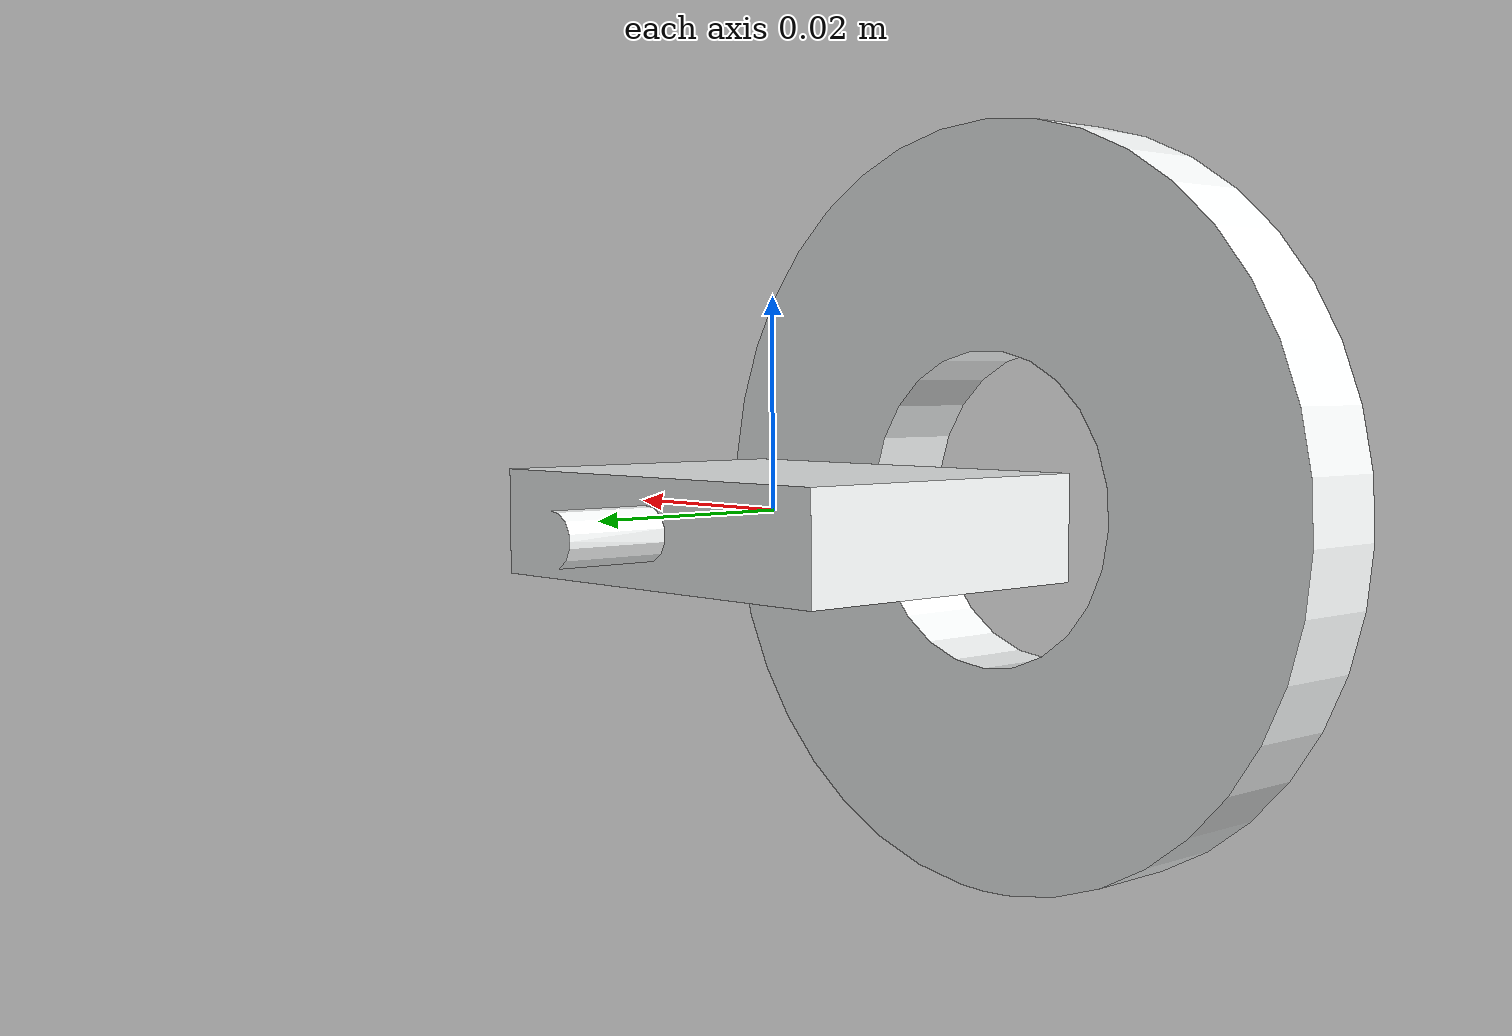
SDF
<sdf version='1.9'>
  <model name='Montaj1'>
    <link name='base_link'>
      <inertial>
        <pose>-0.0013654 -0.00019199 -0.0012332 0 0 0</pose>
        <mass>0.014123</mass>
        <inertia>
          <ixx>1.4814999999999999e-06</ixx>
          <ixy>-1.6467e-22</ixy>
          <ixz>8.7230000000000001e-25</ixz>
          <iyy>2.2071999999999998e-06</iyy>
          <iyz>7.5505000000000004e-23</iyz>
          <izz>3.4597000000000001e-06</izz>
        </inertia>
      </inertial>
      <collision name='base_link_collision'>
        <pose>0 0 0 0 0 0</pose>
        <geometry>
          <mesh>
            <scale>1 1 1</scale>
            <uri>model://urdf/Montaj1/meshes/base_link.STL</uri>
          </mesh>
        </geometry>
      </collision>
      <visual name='base_link_visual'>
        <pose>0 0 0 0 0 0</pose>
        <geometry>
          <mesh>
            <scale>1 1 1</scale>
            <uri>model://urdf/Montaj1/meshes/base_link.STL</uri>
          </mesh>
        </geometry>
        <material>
          <diffuse>0.9902 1 1 1</diffuse>
          <ambient>0.9902 1 1 1</ambient>
        </material>
      </visual>
    </link>
    <joint name='wheelleft_joint' type='revolute'>
      <pose relative_to='base_link'>-0.0013654 -0.027601 -0.0012332 -3.141585307179587 0 0</pose>
      <parent>base_link</parent>
      <child>wheelleft_link</child>
      <axis>
        <xyz>0 1 0</xyz>
        <limit>
          <lower>-10000000000000000</lower>
          <upper>10000000000000000</upper>
        </limit>
        <dynamics>
          <spring_reference>0</spring_reference>
          <spring_stiffness>0</spring_stiffness>
        </dynamics>
      </axis>
    </joint>
    <link name='wheelleft_link'>
      <pose relative_to='wheelleft_joint'>0 0 0 0 0 0</pose>
      <inertial>
        <pose>-1.4095e-17 0.005 -3.2526e-18 0 0 0</pose>
        <mass>0.041633999999999997</mass>
        <inertia>
          <ixx>1.9805000000000001e-05</ixx>
          <ixy>-2.268e-38</ixy>
          <ixz>4.4412000000000003e-39</ixz>
          <iyy>3.8915000000000003e-05</iyy>
          <iyz>1.2785e-21</iyz>
          <izz>1.9805000000000001e-05</izz>
        </inertia>
      </inertial>
      <collision name='wheelleft_link_collision'>
        <pose>0 0 0 0 0 0</pose>
        <geometry>
          <mesh>
            <scale>1 1 1</scale>
            <uri>model://urdf/Montaj1/meshes/wheelleft_link.STL</uri>
          </mesh>
        </geometry>
      </collision>
      <visual name='wheelleft_link_visual'>
        <pose>0 0 0 0 0 0</pose>
        <geometry>
          <mesh>
            <scale>1 1 1</scale>
            <uri>model://urdf/Montaj1/meshes/wheelleft_link.STL</uri>
          </mesh>
        </geometry>
        <material>
          <diffuse>0.9902 1 1 1</diffuse>
          <ambient>0.9902 1 1 1</ambient>
        </material>
      </visual>
    </link>
  </model>
</sdf>
